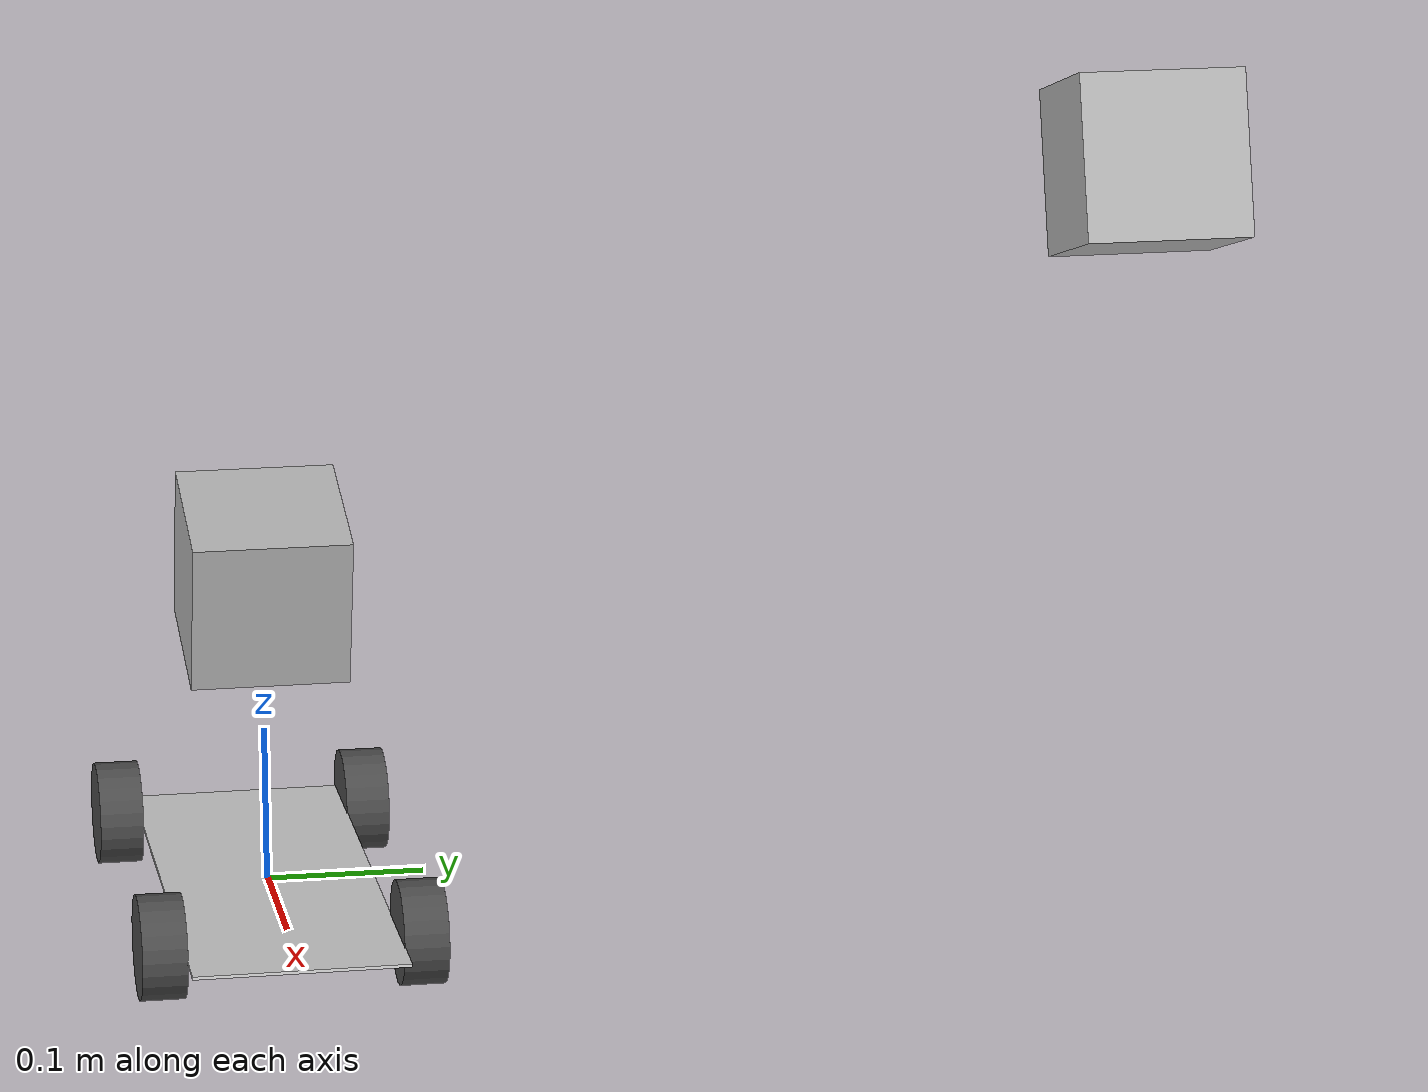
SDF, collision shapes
<?xml version='1.0'?>
<sdf version='1.6'>
  <model name='automobile'>
    <link name='base_link'>
      <include>
        <uri>model://base_link</uri>
        <pose>0 0 0 0 0 0</pose>
      </include>
    </link>
    <joint name='mycar_joint' type='fixed'>
      <parent>chassis::link</parent>
      <child>base_link</child>
    </joint>
    <include>
      <uri>model://chassis</uri>
      <pose>0 0 0 0 0 0</pose>
    </include>
    <!-- including a left rear wheel -->
    <include>
      <uri>model://wheel_left</uri>
      <pose>-0.152 0.081 0 0 0 0</pose>
      <name>wheel_rear_left</name>
    </include>
    <!-- including a front rear wheel -->
    <include>
      <uri>model://wheel_right</uri>
      <pose>-0.152 -0.081 0 0 0 0</pose>
      <name>wheel_rear_right</name>
    </include>
    <!-- including a left steering comp. -->
    <include>
      <uri>model://steering_column</uri>
      <pose>0.112 0.0725 0 0 0 0</pose>
      <name>steer_left</name>
    </include>
    <!-- including a right steering comp. -->
    <include>
      <uri>model://steering_column</uri>
      <pose>0.112 -0.0725 0 0 0 0</pose>
      <name>steer_right</name>
    </include>
    <!-- including a left front wheel -->
    <include>
      <uri>model://wheel_left</uri>
      <pose>0.118 0.081 0 0 0 0</pose>
      <name>wheel_front_left</name>
    </include>
    <!-- including a right front wheel -->
    <include>
      <uri>model://wheel_right</uri>
      <pose>0.118 -0.081 0 0 0 0</pose>
      <name>wheel_front_right</name>
    </include>

    <!-- including the camera link -->
    <include>
      <uri>model://camera</uri>
      <pose>0 0 0.2 0 0.2617 0</pose>
      <name>camera</name>
    </include>

    <!-- including the laser link -->
    <include>
      <uri>model://laser</uri>
      <pose>0 0 0.1 0 0 0</pose>
      <name>laser</name>
    </include>

    <!-- includeing the car body -->
    <include>
      <uri>model://car_body</uri>
      <pose>-0.024 0.0 -0.028 0 0.0 0</pose>
      <name>car_body</name>
    </include>

    <!-- LIST OF JOINTS -->
    <joint name='joint_leftrear_rim' type='revolute'>
      <parent>chassis::link</parent>
      <child>wheel_rear_left::link_rim</child>
      <pose frame=''>0 0 0 0 -0 0</pose>
      <axis>
        <xyz>0 0 -1</xyz>
        <use_parent_model_frame>0</use_parent_model_frame>
        <limit>
          <lower>-1.79769e+308</lower>
          <upper>1.79769e+308</upper>
          <effort>-1</effort>
          <velocity>-1</velocity>
        </limit>
        <dynamics>
          <spring_reference>0</spring_reference>
          <spring_stiffness>0</spring_stiffness>
          <damping>0</damping>
          <friction>0</friction>
        </dynamics>
      </axis>
      <physics>
        <ode>
          <limit>
            <cfm>0</cfm>
            <erp>0.2</erp>
          </limit>
          <suspension>
            <cfm>0</cfm>
            <erp>0.2</erp>
          </suspension>
        </ode>
      </physics>
    </joint>

    <joint name='joint_rightrear_rim' type='revolute'>
      <parent>chassis::link</parent>
      <child>wheel_rear_right::link_rim</child>
      <pose frame=''>0 0 0 0 -0 0</pose>
      <axis>
        <xyz>0 0 -1</xyz>
        <use_parent_model_frame>0</use_parent_model_frame>
        <limit>
          <lower>-1.79769e+308</lower>
          <upper>1.79769e+308</upper>
          <effort>-1</effort>
          <velocity>-1</velocity>
        </limit>
        <dynamics>
          <spring_reference>0</spring_reference>
          <spring_stiffness>0</spring_stiffness>
          <damping>0</damping>
          <friction>0</friction>
        </dynamics>
      </axis>
      <physics>
        <ode>
          <limit>
            <cfm>0</cfm>
            <erp>0.2</erp>
          </limit>
          <suspension>
            <cfm>0</cfm>
            <erp>0.2</erp>
          </suspension>
        </ode>
      </physics>
    </joint>

    <!-- Front right joint between the chassis and the steering comp. -->
    <joint name='joint_leftfront_steer' type='revolute'>
      <parent>chassis::link</parent>
      <child>steer_left::link_steer</child>
      <pose frame=''>0 0 0.005 0 -0 0</pose>
      <axis>
        <xyz>0 1 0</xyz>
        <use_parent_model_frame>0</use_parent_model_frame>
        <limit>
          <lower>-1.79769e+308</lower>
          <upper>1.79769e+308</upper>
          <effort>-1</effort>
          <velocity>-1</velocity>
        </limit>
        <dynamics>
          <spring_reference>0</spring_reference>
          <spring_stiffness>0</spring_stiffness>
          <damping>0</damping>
          <friction>0</friction>
        </dynamics>
      </axis>
      <physics>
        <ode>
          <limit>
            <cfm>0</cfm>
            <erp>0.2</erp>
          </limit>
          <suspension>
            <cfm>0</cfm>
            <erp>0.2</erp>
          </suspension>
        </ode>
      </physics>
    </joint>
    <!-- Front left joint between the chassis and the steering comp. -->
    <joint name='joint_rightfront_steer' type='revolute'>
      <parent>chassis::link</parent>
      <child>steer_right::link_steer</child>
      <pose frame=''>0 0 -0.005 0 -0 0</pose>
      <axis>
        <xyz>0 1 0</xyz>
        <use_parent_model_frame>0</use_parent_model_frame>
        <limit>
          <lower>-1.79769e+308</lower>
          <upper>1.79769e+308</upper>
          <effort>-1</effort>
          <velocity>-1</velocity>
        </limit>
        <dynamics>
          <spring_reference>0</spring_reference>
          <spring_stiffness>0</spring_stiffness>
          <damping>0</damping>
          <friction>0</friction>
        </dynamics>
      </axis>
      <physics>
        <ode>
          <limit>
            <cfm>0</cfm>
            <erp>0.2</erp>
          </limit>
          <suspension>
            <cfm>0</cfm>
            <erp>0.2</erp>
          </suspension>
        </ode>
      </physics>
    </joint>

    <!-- Right joint between the steering and the rim   -->
    <joint name='joint_rightfront_rim' type='revolute'>
      <parent>steer_right::link_steer</parent>
      <child>wheel_front_right::link_rim</child>
      <pose frame=''>0 0 0 0 -0 0</pose>
      <axis>
        <xyz>0 0 -1</xyz>
        <use_parent_model_frame>0</use_parent_model_frame>
        <limit>
          <lower>-1.79769e+308</lower>
          <upper>1.79769e+308</upper>
          <effort>-1</effort>
          <velocity>-1</velocity>
        </limit>
        <dynamics>
          <spring_reference>0</spring_reference>
          <spring_stiffness>0</spring_stiffness>
          <damping>0</damping>
          <friction>0</friction>
        </dynamics>
      </axis>
      <physics>
        <ode>
          <limit>
            <cfm>0</cfm>
            <erp>0.2</erp>
          </limit>
          <suspension>
            <cfm>0</cfm>
            <erp>0.2</erp>
          </suspension>
        </ode>
      </physics>
    </joint>

    <!-- Left joint between the steering and the rim   -->
    <joint name='joint_leftfront_rim' type='revolute'>
      <parent>steer_left::link_steer</parent>
      <child>wheel_front_left::link_rim</child>
      <pose frame=''>0 0 0 0 -0 0</pose>
      <axis>
        <xyz>0 0 -1</xyz>
        <use_parent_model_frame>0</use_parent_model_frame>
        <limit>
          <lower>-1.79769e+308</lower>
          <upper>1.79769e+308</upper>
          <effort>-1</effort>
          <velocity>-1</velocity>
        </limit>
        <dynamics>
          <spring_reference>0</spring_reference>
          <spring_stiffness>0</spring_stiffness>
          <damping>0</damping>
          <friction>0</friction>
        </dynamics>
      </axis>
      <physics>
        <ode>
          <limit>
            <cfm>0</cfm>
            <erp>0.2</erp>
          </limit>
          <suspension>
            <cfm>0</cfm>
            <erp>0.2</erp>
          </suspension>
        </ode>
      </physics>
    </joint>

    <!-- fixed joint for the car body -->
    <joint name='joint_body' type='fixed'>
      <parent>chassis::link</parent>
      <child>car_body::link</child>
      <pose frame=''>0 0 0 0 -0 0</pose>
      <physics>
        <ode>
          <limit>
            <cfm>0</cfm>
            <erp>0.2</erp>
          </limit>
          <suspension>
            <cfm>0</cfm>
            <erp>0.2</erp>
          </suspension>
        </ode>
      </physics>
    </joint>

    <!-- fixed joint for the camera -->
    <joint name='joint_camera' type='fixed'>
      <parent>chassis::link</parent>
      <child>camera::link_camera</child>
      <pose frame=''>0 0 0 0 -0 0</pose>
      <physics>
        <ode>
          <limit>
            <cfm>0</cfm>
            <erp>0.2</erp>
          </limit>
          <suspension>
            <cfm>0</cfm>
            <erp>0.2</erp>
          </suspension>
        </ode>
      </physics>
    </joint>

    <!-- fixed joint for the laser -->
    <joint name='joint_laser' type='fixed'>
      <parent>chassis::link</parent>
      <child>laser::link_laser</child>
      <pose frame=''>0 0 0 0 -0 0</pose>
      <physics>
        <ode>
          <limit>
            <cfm>0</cfm>
            <erp>0.2</erp>
          </limit>
          <suspension>
            <cfm>0</cfm>
            <erp>0.2</erp>
          </suspension>
        </ode>
      </physics>
    </joint>

    <!-- Plugin  -->
    <plugin name='CarLikeRobotPlugin' filename='libcar_plugin.so'>
      <wheelbase>0.26</wheelbase>
      <axletrack>0.162</axletrack>
      <wheelradius>0.0325</wheelradius>
      <speed_wheel_joints>
        <front_wheel_joints>
          <leftjoint>joint_leftfront_rim</leftjoint>
          <rightjoint>joint_rightfront_rim</rightjoint>
        </front_wheel_joints>
        <rear_wheel_joints>
          <leftjoint>joint_leftrear_rim</leftjoint>
          <rightjoint>joint_rightrear_rim</rightjoint>
        </rear_wheel_joints>
        <kp>0.01</kp>
        <ki>0.0</ki>
        <kd>0.0</kd>
      </speed_wheel_joints>
      <steer_wheel_joints>
        <leftjoint>joint_leftfront_steer</leftjoint>
        <rightjoint>joint_rightfront_steer</rightjoint>
        <kp>10</kp>
        <ki>0.0</ki>
        <kd>0.1</kd>
      </steer_wheel_joints>
      <initial_steer>0.0</initial_steer>
      <initial_speed>0.0</initial_speed>
      <robotNamespace>/</robotNamespace>
    </plugin>

    <plugin name='bno055' filename='libbno055_plugin.so'> </plugin>
    <plugin name='gps' filename='libgps_plugin.so'> </plugin>

  </model>
</sdf>

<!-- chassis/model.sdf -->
<sdf version='1.6'>
  <model name='chassis'>
    <link name='link'>
      <inertial>
        <mass>0.26244</mass>
        <inertia>
          <ixx>0.00283444</ixx>
          <ixy>0</ixy>
          <ixz>0</ixz>
          <iyy>0.00039867</iyy>
          <iyz>0</iyz>
          <izz>0.00323293</izz>
        </inertia>
        <pose frame=''>0 0 0 0 -0 0</pose>
      </inertial>
      <pose frame=''>0 0 0 0 0 1.5708</pose>
      <gravity>1</gravity>
      <kinematic>0</kinematic>
      <enable_wind>0</enable_wind>
      <visual name='visual'>
        <pose frame=''>0 0 -0.0065 0 0 -1.57079</pose>
        <geometry>
          <mesh>
            <uri>model://chassis/meshes/chassisV5.dae</uri>
            <scale>1 1 1</scale>
          </mesh>
        </geometry>
        <material>
          <lighting>1</lighting>
          <shader type='vertex'>
            <normal_map>__default__</normal_map>
          </shader>
          <ambient>0.6 0.6 0.6 1</ambient>
          <diffuse>0.85 0.85 0.85 1</diffuse>
          <specular>0.6 0.6 0.6 1</specular>
          <emissive>0 0 0 1</emissive>
        </material>
        <transparency>0</transparency>
        <cast_shadows>1</cast_shadows>
      </visual>
      <collision name='collision'>
        <laser_retro>0</laser_retro>
        <max_contacts>10</max_contacts>
        <pose frame=''>0 0 0 0 -0 0</pose>
        <geometry>
          <box>
            <size>0.135 0.36 0.002</size>
          </box>
        </geometry>
        <surface>
          <friction>
            <ode>
              <mu>1</mu>
              <mu2>1</mu2>
              <fdir1>0 0 0</fdir1>
              <slip1>0</slip1>
              <slip2>0</slip2>
            </ode>
            <torsional>
              <coefficient>1</coefficient>
              <patch_radius>0</patch_radius>
              <surface_radius>0</surface_radius>
              <use_patch_radius>1</use_patch_radius>
              <ode>
                <slip>0</slip>
              </ode>
            </torsional>
          </friction>
          <bounce>
            <restitution_coefficient>0</restitution_coefficient>
            <threshold>1e+06</threshold>
          </bounce>
          <contact>
            <collide_without_contact>0</collide_without_contact>
            <collide_without_contact_bitmask>1</collide_without_contact_bitmask>
            <collide_bitmask>1</collide_bitmask>
            <ode>
              <soft_cfm>0</soft_cfm>
              <soft_erp>0.2</soft_erp>
              <kp>1e+13</kp>
              <kd>1</kd>
              <max_vel>0.01</max_vel>
              <min_depth>0</min_depth>
            </ode>
            <bullet>
              <split_impulse>1</split_impulse>
              <split_impulse_penetration_threshold>-0.01</split_impulse_penetration_threshold>
              <soft_cfm>0</soft_cfm>
              <soft_erp>0.2</soft_erp>
              <kp>1e+13</kp>
              <kd>1</kd>
            </bullet>
          </contact>
        </surface>
      </collision>
    </link>
  </model>
</sdf>

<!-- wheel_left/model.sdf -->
<sdf version='1.6'>
  <model name='wheel_left'>

    <link name='link_rim'>
      <inertial>
        <mass>0.038</mass>
        <inertia>
          <ixx>0.00001283</ixx>
          <ixy>0</ixy>
          <ixz>0</ixz>
          <iyy>0.00001283</iyy>
          <iyz>0</iyz>
          <izz>0.00002069</izz>
        </inertia>
        <pose frame=''>0 0 0 0 -0 0</pose>
      </inertial>
      <pose frame=''>0.0 0.0 0 1.5708 0 0</pose>
      <gravity>1</gravity>
      <kinematic>0</kinematic>
      <enable_wind>0</enable_wind>
      <visual name='visual'>
       <pose frame=''>0 0 0 -1.5708 0 0</pose>
       <geometry>
          <mesh>
            <uri>model://wheel_left/meshes/rim.dae</uri>
            <scale>1 1 1</scale>
          </mesh>
        </geometry>
        <material>
          <lighting>1</lighting>
          <shader type='vertex'>
            <normal_map>__default__</normal_map>
          </shader>
          <ambient>0.2 0.2 0.2 1</ambient>
          <diffuse>0.3 0.3 0.3 1</diffuse>
          <specular>0.5 0.5 0.5 1</specular>
          <emissive>0.0 0.0 0.0 0.0</emissive>
        </material>
        <transparency>0</transparency>
        <cast_shadows>1</cast_shadows>
      </visual>
      <collision name='collision'>
        <laser_retro>0</laser_retro>
        <max_contacts>10</max_contacts>
        <pose frame=''>0 0 0 0 -0 0</pose>
        <geometry>
          <cylinder>
            <radius>0.033000</radius>
            <length>0.028000</length>
          </cylinder>
        </geometry>
        <surface>
          <friction>
            <ode>
              <mu>0.7</mu>
              <mu2>0.7</mu2>
              <fdir1>0 0 0</fdir1>
              <slip1>0</slip1>
              <slip2>0</slip2>
            </ode>
            <torsional>
              <coefficient>1</coefficient>
              <patch_radius>0</patch_radius>
              <surface_radius>0</surface_radius>
              <use_patch_radius>1</use_patch_radius>
              <ode>
                <slip>0</slip>
              </ode>
            </torsional>
          </friction>
          <bounce>
            <restitution_coefficient>0</restitution_coefficient>
            <threshold>1e+06</threshold>
          </bounce>
          <contact>
            <collide_without_contact>0</collide_without_contact>
            <collide_without_contact_bitmask>1</collide_without_contact_bitmask>
            <collide_bitmask>1</collide_bitmask>
            <ode>
              <soft_cfm>0</soft_cfm>
              <soft_erp>0.2</soft_erp>
              <kp>1e+07</kp>
              <kd>1</kd>
              <max_vel>0.01</max_vel>
              <min_depth>0</min_depth>
            </ode>
            <bullet>
              <split_impulse>1</split_impulse>
              <split_impulse_penetration_threshold>-0.01</split_impulse_penetration_threshold>
              <soft_cfm>0</soft_cfm>
              <soft_erp>0.2</soft_erp>
              <kp>1e+07</kp>
              <kd>1</kd>
            </bullet>
          </contact>
        </surface>
      </collision>
    </link>

  </model>
</sdf>

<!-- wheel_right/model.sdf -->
<sdf version='1.6'>
  <model name='wheel_right'>

    <link name='link_rim'>
      <inertial>
        <mass>0.038</mass>
        <inertia>
          <ixx>0.00001283</ixx>
          <ixy>0</ixy>
          <ixz>0</ixz>
          <iyy>0.00001283</iyy>
          <iyz>0</iyz>
          <izz>0.00002069</izz>
        </inertia>
        <pose frame=''>0 0 0 0 -0 0</pose>
      </inertial>
      <pose frame=''>0.0 0.0 0 1.5708 0 0</pose>
      <gravity>1</gravity>
      <kinematic>0</kinematic>
      <enable_wind>0</enable_wind>
      <visual name='visual'>
       <pose frame=''>0 0 0 -1.5708 0 0</pose>
       <geometry>
          <mesh>
            <uri>model://wheel_right/meshes/rim.dae</uri>
            <scale>1 1 1</scale>
          </mesh>
        </geometry>
        <material>
          <lighting>1</lighting>
          <shader type='vertex'>
            <normal_map>__default__</normal_map>
          </shader>
          <ambient>0.2 0.2 0.2 1</ambient>
          <diffuse>0.3 0.3 0.3 1</diffuse>
          <specular>0.5 0.5 0.5 1</specular>
          <emissive>0.0 0.0 0.0 0.0</emissive>
        </material>
        <transparency>0</transparency>
        <cast_shadows>1</cast_shadows>
      </visual>
      <collision name='collision'>
        <laser_retro>0</laser_retro>
        <max_contacts>10</max_contacts>
        <pose frame=''>0 0 0 0 -0 0</pose>
        <geometry>
          <cylinder>
            <radius>0.033000</radius>
            <length>0.028000</length>
          </cylinder>
        </geometry>
        <surface>
          <friction>
            <ode>
              <mu>0.7</mu>
              <mu2>0.7</mu2>
              <fdir1>0 0 0</fdir1>
              <slip1>0</slip1>
              <slip2>0</slip2>
            </ode>
            <torsional>
              <coefficient>1</coefficient>
              <patch_radius>0</patch_radius>
              <surface_radius>0</surface_radius>
              <use_patch_radius>1</use_patch_radius>
              <ode>
                <slip>0</slip>
              </ode>
            </torsional>
          </friction>
          <bounce>
            <restitution_coefficient>0</restitution_coefficient>
            <threshold>1e+06</threshold>
          </bounce>
          <contact>
            <collide_without_contact>0</collide_without_contact>
            <collide_without_contact_bitmask>1</collide_without_contact_bitmask>
            <collide_bitmask>1</collide_bitmask>
            <ode>
              <soft_cfm>0</soft_cfm>
              <soft_erp>0.2</soft_erp>
              <kp>1e+07</kp>
              <kd>1</kd>
              <max_vel>0.01</max_vel>
              <min_depth>0</min_depth>
            </ode>
            <bullet>
              <split_impulse>1</split_impulse>
              <split_impulse_penetration_threshold>-0.01</split_impulse_penetration_threshold>
              <soft_cfm>0</soft_cfm>
              <soft_erp>0.2</soft_erp>
              <kp>1e+07</kp>
              <kd>1</kd>
            </bullet>
          </contact>
        </surface>
      </collision>
    </link>

  </model>
</sdf>

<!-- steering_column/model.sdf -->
<sdf version='1.6'>
  <model name='steering_column'>
    <link name='link_steer'>
      <inertial>
        <mass>0.001</mass>
        <inertia>
          <ixx>0.00014583</ixx>
          <ixy>0</ixy>
          <ixz>0</ixz>
          <iyy>0.00014583</iyy>
          <iyz>0</iyz>
          <izz>0.000125</izz>
        </inertia>
        <pose frame=''>0 0 0 0 -0 0</pose>
      </inertial>
      <pose frame=''>0 0 0 1.5708 0 0</pose>
      <gravity>1</gravity>
      <self_collide>0</self_collide>
      <kinematic>0</kinematic>
      <enable_wind>0</enable_wind>
      <visual name='visual'>
        <pose frame=''>0 0 0 0 -0 0</pose>
        <geometry>
          <cylinder>
            <radius>0.001</radius>
            <length>0.01</length>
          </cylinder>
        </geometry>
        <material>
          <lighting>1</lighting>
          <script>
            <uri>file://media/materials/scripts/gazebo.material</uri>
            <name>Gazebo/Grey</name>
          </script>
          <shader type='vertex'>
            <normal_map>__default__</normal_map>
          </shader>
          <ambient>0.3 0.3 0.3 1</ambient>
          <diffuse>0.7 0.7 0.7 1</diffuse>
          <specular>0.01 0.01 0.01 1</specular>
          <emissive>0 0 0 1</emissive>
        </material>
        <transparency>0</transparency>
        <cast_shadows>1</cast_shadows>
      </visual>
      <collision name='collision'>
        <laser_retro>0</laser_retro>
        <max_contacts>10</max_contacts>
        <pose frame=''>0 0 0 0 -0 0</pose>
        <geometry>
          <cylinder>
            <radius>0.001</radius>
            <length>0.01</length>
          </cylinder>
        </geometry>
        <surface>
          <friction>
            <ode>
              <mu>1</mu>
              <mu2>1</mu2>
              <fdir1>0 0 0</fdir1>
              <slip1>0</slip1>
              <slip2>0</slip2>
            </ode>
            <torsional>
              <coefficient>1</coefficient>
              <patch_radius>0</patch_radius>
              <surface_radius>0</surface_radius>
              <use_patch_radius>1</use_patch_radius>
              <ode>
                <slip>0</slip>
              </ode>
            </torsional>
          </friction>
          <bounce>
            <restitution_coefficient>0</restitution_coefficient>
            <threshold>1e+06</threshold>
          </bounce>
          <contact>
            <collide_without_contact>0</collide_without_contact>
            <collide_without_contact_bitmask>1</collide_without_contact_bitmask>
            <collide_bitmask>1</collide_bitmask>
            <ode>
              <soft_cfm>0</soft_cfm>
              <soft_erp>0.2</soft_erp>
              <kp>1e+13</kp>
              <kd>1</kd>
              <max_vel>0.01</max_vel>
              <min_depth>0</min_depth>
            </ode>
            <bullet>
              <split_impulse>1</split_impulse>
              <split_impulse_penetration_threshold>-0.01</split_impulse_penetration_threshold>
              <soft_cfm>0</soft_cfm>
              <soft_erp>0.2</soft_erp>
              <kp>1e+13</kp>
              <kd>1</kd>
            </bullet>
          </contact>
        </surface>
      </collision>
    </link>

  </model>
</sdf>

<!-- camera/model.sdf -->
<sdf version="1.5">
  <model name="camera">
    <pose>0 0 0.05 0 0 0</pose>
    <link name="link">
      <inertial>
        <mass>0.1</mass>
        <inertia>
          <ixx>0.000166667</ixx>
          <iyy>0.000166667</iyy>
          <izz>0.000166667</izz>
        </inertia>
      </inertial>
      <collision name="collision">
        <geometry>
          <box>
            <size>0.1 0.1 0.1</size>
          </box>
        </geometry>
      </collision>
      <visual name="visual">
        <geometry>
          <box>
            <size>0.1 0.1 0.1</size>
          </box>
        </geometry>
      </visual>
      <sensor name="camera" type="camera">
        <camera>
          <horizontal_fov>1.047</horizontal_fov>
          <image>
            <width>320</width>
            <height>240</height>
          </image>
          <clip>
            <near>0.1</near>
            <far>100</far>
          </clip>
        </camera>
        <always_on>1</always_on>
        <update_rate>30</update_rate>
        <visualize>true</visualize>
      </sensor>
    </link>
  </model>
</sdf>

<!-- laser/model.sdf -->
<sdf version='1.6'>
  <model name="laser">

	<link name='hokuyo_link'>
         <pose frame=''>0.25 0.5 0.40 0 -0.3 -0</pose>
         <inertial>
         	<mass>0.1</mass>
         </inertial>
      <collision name='collision'>
        <geometry>
          <box>
            <size>0.1 0.1 0.1</size>
          </box>
        </geometry>
      </collision>
      <visual name='visual'>
        <geometry>
          <mesh>
            <uri>model://hokuyo/meshes/hokuyo.dae</uri>
          </mesh>
        </geometry>
      </visual>
       <sensor type="ray" name="head_hokuyo_sensor">
			<pose>0 0 0 0 0 0</pose>
			<visualize>true</visualize>
			<update_rate>30</update_rate>
			<ray>
				<scan>
					<horizontal>
						<samples>360</samples>
						<resolution>1</resolution>
						<min_angle>-3.14</min_angle>
						<max_angle>3.14</max_angle>
					</horizontal>
				</scan>
				<range>
					<min>0.10</min>
					<max>10.0</max>
					<resolution>0.01</resolution>
				</range>
				<noise>
					<type>gaussian</type>
					<mean>0.0</mean>
					<stddev>0.01</stddev>
				</noise>
			</ray>
			<plugin name="gazebo_ros_head_hokuyo_controller" filename="libgazebo_ros_laser.so">
				<topicName>/scan</topicName>
				<frameName>hokuyo_link</frameName>
			</plugin>
		</sensor>
             </link>

       <joint type="fixed" name="hokuyo_joint">
         <pose>0.15 0 0.3 0 0 0</pose>
         <child>hokuyo_link</child>
         <parent>chassis</parent>
        <axis>
        <xyz>0 1 0</xyz>
      </axis>
     </joint>

   </model>
</sdf>

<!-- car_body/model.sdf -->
<sdf version='1.6'>
  <model name='body'>
    <link name='link'>
      <inertial>
        <mass>1</mass>
        <inertia>
          <ixx>0.166667</ixx>
          <ixy>0</ixy>
          <ixz>0</ixz>
          <iyy>0.166667</iyy>
          <iyz>0</iyz>
          <izz>0.166667</izz>
        </inertia>
      </inertial>
      <pose frame=''>0 -0 0 0 -0 0</pose>
      <visual name='visual'>
        <pose frame=''>0 0 0 0 -0 0</pose>
        <geometry>
          <mesh>
            <uri>model://car_body/meshes/CarBody.dae</uri>
            <scale>1 1 1</scale>
          </mesh>
        </geometry>
        <material>
            <script>
              <uri>model://car_body/materials/scripts</uri>
              <uri>model://car_body/materials/textures</uri>
              <name>CarBody/Image</name>
            </script>
        </material>
        <transparency>0</transparency>
        <cast_shadows>1</cast_shadows>
      </visual>
    </link>
    <static>0</static>
    <allow_auto_disable>1</allow_auto_disable>
  </model>
</sdf>
